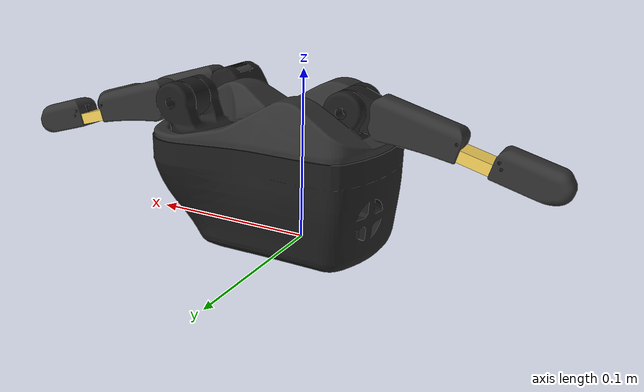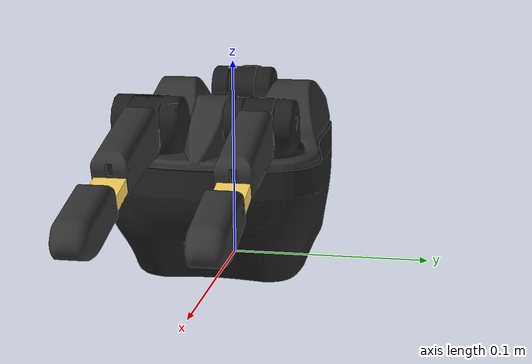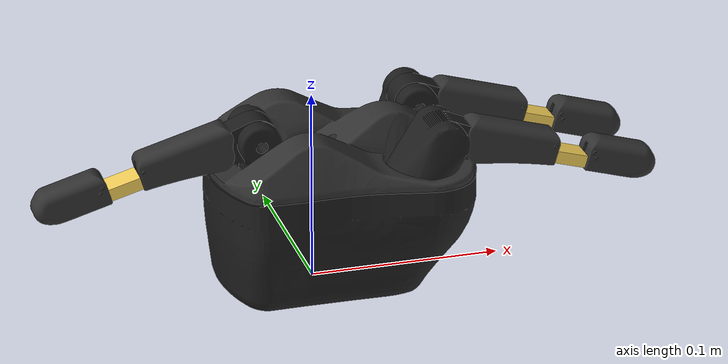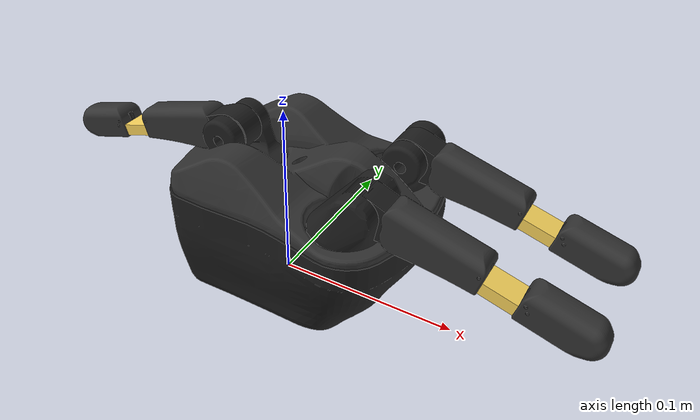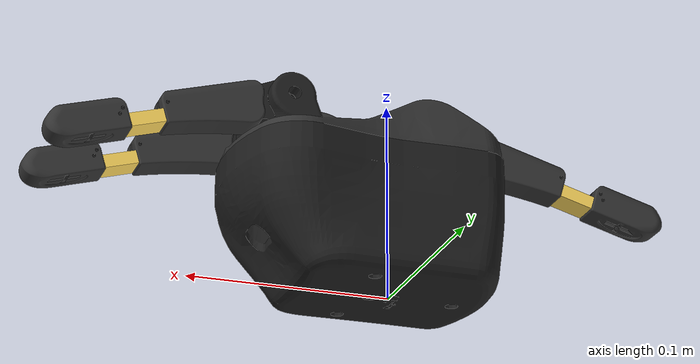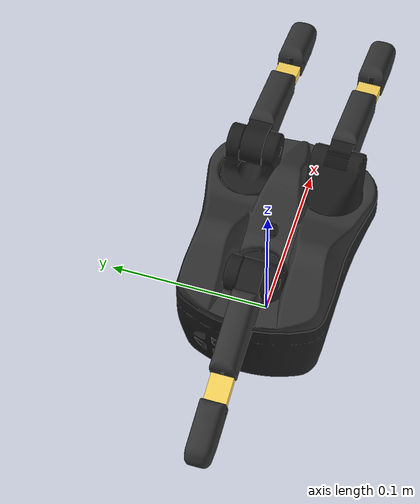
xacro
<?xml version="1.0"?>
<robot xmlns:xacro="http://www.ros.org/wiki/xacro" name="reflex">

  <xacro:arg name="actuate_reflex"             default="true"/>
  <xacro:arg name="use_reflex_contact_sensors" default="false"/>

  <!-- Switch joint type for actuated joints depending on if they are being used for control -->
  <xacro:if value="$(arg actuate_reflex)">
    <xacro:property name="joint_type" value="revolute"/>
  </xacro:if>
  <xacro:unless value="$(arg actuate_reflex)">
    <xacro:property name="joint_type" value="fixed"/>
  </xacro:unless>

  <xacro:property name="pi" value="3.14159265359" />
  <xacro:property name="mesh_path" value="package://ll4ma_robots_description/meshes/reflex"/>

  <xacro:include filename="$(find ll4ma_robots_description)/urdf/xacro_macros/inertia_tensors.xacro"/>

  <!-- ======================================= Masses ======================================== -->
  <!-- These are rough approximations, the total hand mass was measured to be about 0.9kg,     -->
  <!-- most of it concentrated in the shell anyways, so for sake of arm controller, most mass  -->
  <!-- is being given to shell/pad, treating fingers as almost massless, so that KDL chain for -->
  <!-- arm can just go through the palm pad and be accounting for most of the hand mass.       -->

  <xacro:property name="flex_link_mass"     value="0.01"/>
  <xacro:property name="proximal_link_mass" value="0.01"/>
  <xacro:property name="distal_link_mass"   value="0.01"/>
  <xacro:property name="proximal_pad_mass"  value="0.01"/>
  <xacro:property name="distal_pad_mass"    value="0.01"/>
  <xacro:property name="swivel_link_mass"   value="0.01"/>
  <xacro:property name="shell_mass"         value="0.74"/>
  <xacro:property name="pad_mass"           value="0.1"/>

  <!-- ====================================== Link Macros ==================================== -->

  <xacro:macro name="flex_link" params="finger_id">
    <link name="finger_${finger_id}_flex_link">
      <visual>
        <origin xyz="0.0005 0 -0.003" rpy="0 0 0"/>
        <geometry>
	  <box size="0.017 0.014 0.0065"/>
        </geometry>
	<material name="gold">
	  <color rgba="${254/255} ${216/255} ${93/255} 1"/>
	</material>
      </visual>
      <inertial>
        <origin xyz="0 0 0" rpy="0 0 0"/>
	<mass value="${flex_link_mass}"/>
	<xacro:cuboid_inertia m="${flex_link_mass}" x="0.005" y="0.014" z="0.015"/>
      </inertial>
      <collision>
        <origin xyz="0 0 0" rpy="0 0 0"/>
  	<geometry>
	  <box size="0.01 0.01 0.01"/>
  	</geometry>
      </collision>
    </link>
  </xacro:macro>

  <xacro:macro name="proximal_link" params="finger_id">
    <link name="proximal_${finger_id}">
      <visual>
	<origin xyz="-0.011 0.007 0.011" rpy="${pi} 0 0"/>
	<geometry>
          <mesh filename="${mesh_path}/proximal.stl"/>
	</geometry>
	<material name="black"/>
      </visual>
      <inertial>
	<origin xyz="-0.011 0.007 0.011" rpy="${pi} 0 0"/>
	<mass value="${proximal_link_mass}"/>
	<xacro:cuboid_inertia m="${proximal_link_mass}" x="0.02" y="0.15" z="0.071"/>
      </inertial>
      <collision>
	<origin xyz="-0.011 0.007 0.011" rpy="${pi} 0 0"/>
	<geometry>
	  <mesh filename="${mesh_path}/proximal_coll.stl"/>
	</geometry>
      </collision>
    </link>
  </xacro:macro>

  <xacro:macro name="distal_link" params="finger_id">
    <link name="distal_${finger_id}">
      <visual>
	<origin xyz="-0.077 0.007 0.007" rpy="${pi} 0 0"/>
	<geometry>
          <mesh filename="${mesh_path}/distal.stl"/>
	</geometry>
	<material name="black"/>
      </visual>
      <inertial>
	<origin xyz="-0.077 0.007 0.007" rpy="3.1459 0 0"/>
	<mass value="${distal_link_mass}"/>
	<xacro:cuboid_inertia m="${distal_link_mass}" x="0.017" y="0.15" z="0.039"/>
      </inertial>
      <collision>
	<origin xyz="-0.077 0.007 0.007" rpy="${pi} 0 0"/>
	<geometry>
	  <mesh filename="${mesh_path}/distal_coll.stl"/>
	</geometry>
      </collision>
    </link>
  </xacro:macro>

  <xacro:macro name="proximal_pad" params="finger_id">
    <link name="proximal_${finger_id}_pad">
      <visual>
	<origin xyz="-0.008 0.014 -0.002" rpy="${pi/2} ${pi/2} 0" />
	<geometry>
          <mesh filename="${mesh_path}/proximal_pad.stl"/>
	</geometry>
	<material name="dark_grey">
	  <color rgba="0.2 0.2 0.2 1"/>
	</material>
      </visual>
      <inertial>
	<origin xyz="-0.008 0.014 -0.002" rpy="${pi/2} ${pi/2} 0"/>
	<mass value="${proximal_pad_mass}"/>
	<xacro:cuboid_inertia m="${proximal_pad_mass}" x="0.005" y="0.15" z="0.071"/>
      </inertial>
      <collision>
	<origin xyz="-0.008 0.014 -0.002" rpy="${pi/2} ${pi/2} 0"/>
	<geometry>
	  <mesh filename="${mesh_path}/proximal_pad_coll.stl"/>
	</geometry>
      </collision>
    </link>
  </xacro:macro>

  <xacro:macro name="distal_pad" params="finger_id">
    <link name="distal_${finger_id}_pad">
      <visual>
	<origin xyz="-0.00825 0.009 0.057" rpy="${pi/2} ${pi/2} 0"/>
	<geometry>
          <mesh filename="${mesh_path}/distal_pad.stl"/>
	</geometry>
	<material name="dark_grey">
	  <color rgba="0.2 0.2 0.2 1"/>
	</material>
      </visual>
      <inertial>
	<origin xyz="-0.00825 0.009 0.057" rpy="${pi/2} ${pi/2} 0"/>
	<mass value="${distal_pad_mass}"/>
	<xacro:cuboid_inertia m="${distal_pad_mass}" x="0.005" y="0.15" z="0.039"/>
      </inertial>
      <collision>
	<origin xyz="-0.00825 0.009 0.057" rpy="${pi/2} ${pi/2} 0"/>
	<geometry>
	  <mesh filename="${mesh_path}/distal_pad_coll.stl"/>
	</geometry>
      </collision>
    </link>
  </xacro:macro>

  <xacro:macro name="swivel_link" params="finger_id">
    <link name="swivel_${finger_id}">
      <visual>
	<origin xyz="0 0 0" rpy="0 0 0"/>
	<geometry>
          <mesh filename="${mesh_path}/swivel_${finger_id}.stl"/>
	</geometry>
	<material name="black"/>
      </visual>
      <inertial>
	<origin xyz="0 0 0" rpy="0 0 0"/>
	<mass value="${swivel_link_mass}"/>
	<xacro:cuboid_inertia m="${swivel_link_mass}" x="0.022" y="0.032" z="0.03"/>
      </inertial>
      <collision>
	<origin xyz="0 0 0" rpy="0 0 0"/>
	<geometry>
	  <mesh filename="${mesh_path}/swivel_${finger_id}_coll.stl"/>
	</geometry>
      </collision>
    </link>
  </xacro:macro>

  <xacro:macro name="shell_link">
    <link name="shell">
      <visual>
	<origin xyz="0 0 0" rpy="0 0 0"/>
	<geometry>
          <mesh filename="${mesh_path}/base_link.stl"/>
	</geometry>
	<material name="black"/>
      </visual>
      <inertial>
	<origin xyz="0 0 0" rpy="0 0 0"/>
	<mass value="${shell_mass}"/>
	<xacro:cuboid_inertia m="${shell_mass}" x="0.066" y="0.091" z="0.136"/>
      </inertial>
      <collision>
	<origin xyz="0 0 0" rpy="0 0 0"/>
	<geometry>
	  <mesh filename="${mesh_path}/base_link_coll.stl"/>
	</geometry>
      </collision>
    </link>
  </xacro:macro>

  <xacro:macro name="pad_link">
    <link name="pad">
      <visual>
	<origin xyz="0 0 0" rpy="0 0 0"/>
	<geometry>
          <mesh filename="${mesh_path}/pad.stl"/>
	</geometry>
	<material name="dark_grey">
	  <color rgba="0.2 0.2 0.2 1"/>
	</material>
      </visual>
      <inertial>
	<origin xyz="0 0 0" rpy="0 0 0"/>
	<mass value="${pad_mass}"/>
	<xacro:cuboid_inertia m="${pad_mass}" x="0.066" y="0.091" z="0.136"/>
      </inertial>
      <collision>
	<origin xyz="0 0 0" rpy="0 0 0"/>
	<geometry>
	  <mesh filename="${mesh_path}/pad_coll.stl"/>
	</geometry>
      </collision>
    </link>
  </xacro:macro>
  <link name="palm_link" /> <!-- A dummy link to define the end-effector frame -->

  <!-- =================================== Tactile macros =================================== -->
  <!-- Sensor links are rendered only to give a link that the Gazebo sensor plugin can latch  -->
  <!-- onto. As such, the collision and inertia are bogus and the visual is defines an        -->
  <!-- approximation of the sensor size. It's important that the mass and inertia are low     -->
  <!-- enough not to interfere with the hand dynamics, but not so small that they physics     -->
  <!-- engine chokes on it (e.g. 1e-8 is too small and the links disappear).                  -->

  <xacro:macro name="sensor_link" params="location finger_id sensor_id">
    <link name="${location}_${finger_id}_sensor_${sensor_id}">
      <visual>
      	<origin xyz="0 0 0" rpy="0 0 0"/>
      	<geometry>
      	  <box size="0.006 0.006 0.0003"/>
      	</geometry>
      </visual>
      <inertial>
	<origin xyz="0 0 0" rpy="0 0 0"/>
	<mass value="1e-5"/>
	<xacro:cuboid_inertia m="1e-5" x="0.006" y="0.006" z="0.0003"/>
      </inertial>
      <collision>
      	<origin xyz="0 0 0" rpy="0 0 0"/>
      	<geometry>
      	  <box size="0.006 0.006 0.0003"/>
      	</geometry>
      </collision>
    </link>
  </xacro:macro>

  <xacro:macro name="sensor_joint" params="location finger_id sensor_id">
    <joint name="${location}_${finger_id}_to_sensor_${sensor_id}" type="fixed">
      <xacro:if value="${location == 'proximal'}">
	<xacro:property name="x_offset" value="0.012"/>
	<xacro:property name="x_gap"    value="0.008"/>
	<xacro:property name="z_offset" value="0.014"/>
      </xacro:if>
      <xacro:if value="${location == 'distal'}">
	<xacro:property name="x_offset" value="0.008"/>
	<xacro:property name="x_gap"    value="0.008"/>
	<xacro:property name="z_offset" value="0.01"/>
      </xacro:if>
      <origin xyz="${x_offset + x_gap * sensor_id} 0 ${z_offset}" rpy="0 0 0"/>
      <parent link="${location}_${finger_id}"/>
      <child link="${location}_${finger_id}_sensor_${sensor_id}"/>
    </joint>
  </xacro:macro>

  <joint name="palm" type="fixed">
    <origin xyz="0 0 0" rpy="3.14159265358979 0 1.5707963267949"/>
    <parent link="pad" />
    <child link="palm_link" />
    <axis xyz="0 0 0"/>
  </joint>

  <!-- ===================================== Joint Macros ===================================== -->

  <xacro:macro name="distal_to_pad" params="finger_id">
    <joint name="distal_${finger_id}_to_pad" type="fixed">
      <origin xyz="-0.01 0 0.001" rpy="${pi/2} 0 -${pi/2}"/>
      <parent link="distal_${finger_id}"/>
      <child link="distal_${finger_id}_pad"/>
    </joint>
  </xacro:macro>

  <xacro:macro name="proximal_to_pad" params="finger_id">
    <joint name="proximal_${finger_id}_to_pad" type="fixed">
      <origin xyz="0 0 0" rpy="${pi/2} 0 -${pi/2}"/>
      <parent link="proximal_${finger_id}"/>
      <child link="proximal_${finger_id}_pad"/>
    </joint>
  </xacro:macro>

  <xacro:macro name="flex_to_distal" params="finger_id">
    <joint name="flex_to_distal_${finger_id}" type="fixed">
      <origin xyz="0 0 0" rpy="0 0 0"/>
      <parent link="finger_${finger_id}_flex_link"/>
      <child link="distal_${finger_id}"/>
    </joint>
  </xacro:macro>

  <xacro:macro name="proximal_to_flex" params="finger_id">
    <joint name="proximal_${finger_id}_to_flex" type="fixed">
      <origin xyz="0.07 0 0.004" rpy="0 0 0"/>
      <parent link="proximal_${finger_id}"/>
      <child link="finger_${finger_id}_flex_link"/>
    </joint>
  </xacro:macro>

  <xacro:macro name="shell_to_pad">
    <joint name="shell_to_pad" type="fixed">
      <origin xyz="0.02 0 0.063" rpy="${pi/2} 0 -${pi/2}"/>
      <parent link="shell"/>
      <child link="pad"/>
      <axis xyz="0 0 0"/>
    </joint>
  </xacro:macro>

  <xacro:macro name="preshape" params="finger_id">
    <joint name="preshape_${finger_id}" type="${joint_type}">
      <parent link="shell"/>
      <child link="swivel_${finger_id}"/>
      <limit effort="15" lower="0.0" upper="${pi/2}" velocity="7"/>
      <xacro:if value="${finger_id == 1}">
	<origin xyz="0.0503973683071414 -0.026 0.063" rpy="0 0 0"/>
	<axis xyz="0 0 -1"/>
      </xacro:if>
      <xacro:if value="${finger_id == 2}">
	<origin xyz="0.0503973683071413 0.026 0.063" rpy="0 0 0"/>
	<axis xyz="0 0 1"/>
      </xacro:if>
    </joint>
  </xacro:macro>

  <xacro:macro name="proximal" params="finger_id">
    <joint name="proximal_joint_${finger_id}" type="${joint_type}">
      <child link="proximal_${finger_id}"/>
      <axis xyz="0 -1 0"/>
      <limit effort="15" lower="0.0" upper="${pi}" velocity="7"/>
      <xacro:if value="${finger_id == 3}">
	<origin xyz="-0.03 0 0.0816" rpy="0 0.28 ${pi}"/>
	<parent link="shell"/>
      </xacro:if>
      <xacro:unless value="${finger_id == 3}">
	<origin xyz="0.01 0 0.0186" rpy="0 0.28 0"/>
	<parent link="swivel_${finger_id}"/>
      </xacro:unless>
    </joint>
  </xacro:macro>

  <xacro:macro name="finger" params="id">
    <xacro:unless value="${id == 3}">
      <xacro:preshape    finger_id="${id}"/>
      <xacro:swivel_link finger_id="${id}"/>
    </xacro:unless>
    <xacro:proximal         finger_id="${id}"/>
    <xacro:proximal_link    finger_id="${id}"/>
    <xacro:proximal_to_pad  finger_id="${id}"/>
    <xacro:proximal_pad     finger_id="${id}"/>
    <xacro:proximal_to_flex finger_id="${id}"/>
    <xacro:flex_link        finger_id="${id}"/>
    <xacro:flex_to_distal   finger_id="${id}"/>
    <xacro:distal_link      finger_id="${id}"/>
    <xacro:distal_to_pad    finger_id="${id}"/>
    <xacro:distal_pad       finger_id="${id}"/>

    <xacro:if value="$(arg use_reflex_contact_sensors)">
      <xacro:sensor_link  location="proximal" finger_id="${id}" sensor_id="1"/>
      <xacro:sensor_joint location="proximal" finger_id="${id}" sensor_id="1"/>
      <xacro:sensor_link  location="proximal" finger_id="${id}" sensor_id="2"/>
      <xacro:sensor_joint location="proximal" finger_id="${id}" sensor_id="2"/>
      <xacro:sensor_link  location="proximal" finger_id="${id}" sensor_id="3"/>
      <xacro:sensor_joint location="proximal" finger_id="${id}" sensor_id="3"/>
      <xacro:sensor_link  location="proximal" finger_id="${id}" sensor_id="4"/>
      <xacro:sensor_joint location="proximal" finger_id="${id}" sensor_id="4"/>
      <xacro:sensor_link  location="proximal" finger_id="${id}" sensor_id="5"/>
      <xacro:sensor_joint location="proximal" finger_id="${id}" sensor_id="5"/>
      <xacro:sensor_link  location="distal"   finger_id="${id}" sensor_id="1"/>
      <xacro:sensor_joint location="distal"   finger_id="${id}" sensor_id="1"/>
      <xacro:sensor_link  location="distal"   finger_id="${id}" sensor_id="2"/>
      <xacro:sensor_joint location="distal"   finger_id="${id}" sensor_id="2"/>
      <xacro:sensor_link  location="distal"   finger_id="${id}" sensor_id="3"/>
      <xacro:sensor_joint location="distal"   finger_id="${id}" sensor_id="3"/>
      <xacro:sensor_link  location="distal"   finger_id="${id}" sensor_id="4"/>
      <xacro:sensor_joint location="distal"   finger_id="${id}" sensor_id="4"/>
    </xacro:if>
  </xacro:macro>

  <!-- The preceding macros are used here to actually construct the kinematic structure-->

  <xacro:shell_link/>
  <xacro:pad_link/>
  <xacro:shell_to_pad/>

  <xacro:finger id="1"/>
  <xacro:finger id="2"/>
  <xacro:finger id="3"/>

</robot>

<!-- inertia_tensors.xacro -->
<robot xmlns:xacro="http://www.ros.org/wiki/xacro">

  <!-- x = depth, y = width, z = height -->
  <xacro:macro name="cuboid_inertia" params="m x y z">
    <inertia ixx="${(1.0 / 12.0) * m * (y * y + z * z)}" ixy="0.0" ixz="0.0"
	     iyy="${(1.0 / 12.0) * m * (x * x + z * z)}" iyz="0.0"
	     izz="${(1.0 / 12.0) * m * (x * x + y * y)}"/>
  </xacro:macro>

  <xacro:macro name="ellipsoid_inertia" params="m x y z">
    <inertia ixx="${(1.0 / 5.0) * m * (y * y + z * z)}" ixy="0.0" ixz="0.0"
	     iyy="${(1.0 / 5.0) * m * (x * x + z * z)}" iyz="0.0"
	     izz="${(1.0 / 5.0) * m * (x * x + y * y)}"/>
  </xacro:macro>

  <xacro:macro name="sphere_inertia" params="m r">
    <inertia ixx="${(2.0 / 5.0) * m * (r * r)}" ixy="0.0" ixz="0.0"
	     iyy="${(2.0 / 5.0) * m * (r * r)}" iyz="0.0"
	     izz="${(2.0 / 5.0) * m * (r * r)}"/>
  </xacro:macro>

  <!-- Assuming z-axis goes along height of cylinder -->
  <xacro:macro name="cylinder_inertia" params="m r h">
    <inertia ixx="${(1.0 / 12.0) * m * (3 * r * r + h * h)}" ixy="0.0" ixz="0.0"
	     iyy="${(1.0 / 12.0) * m * (3 * r * r + h * h)}" iyz="0.0"
	     izz="${(1.0 / 2.0) * m * (r * r)}"/>
  </xacro:macro>

</robot>
